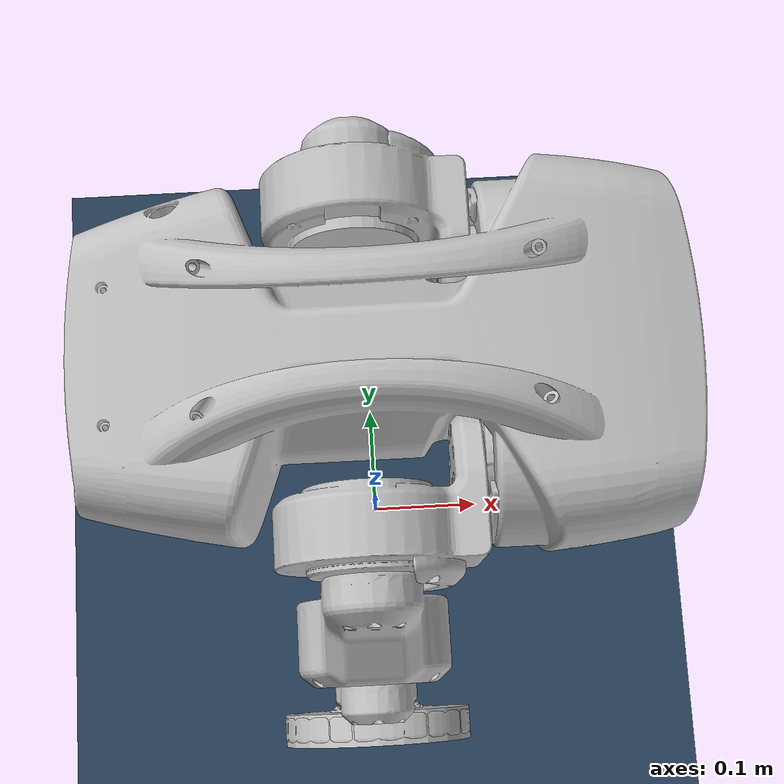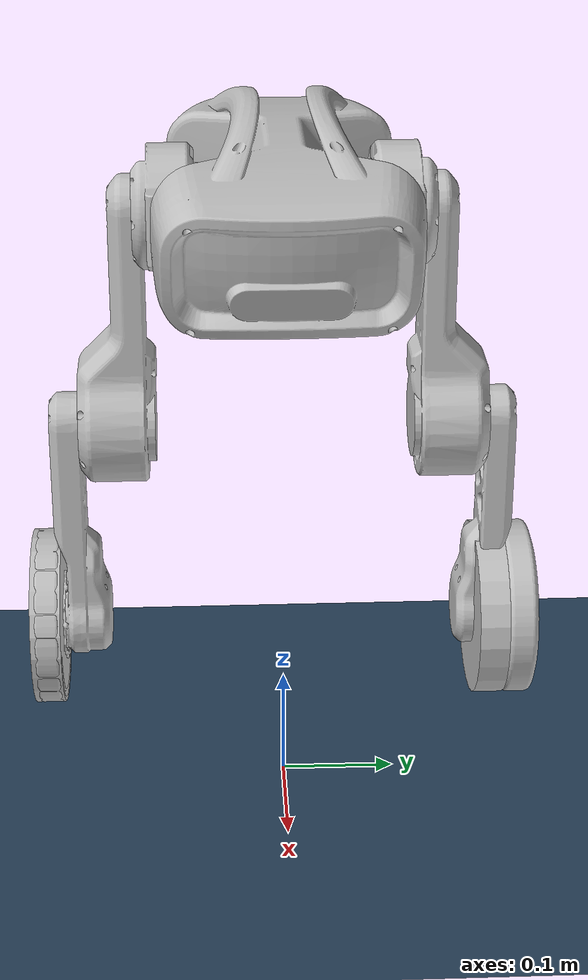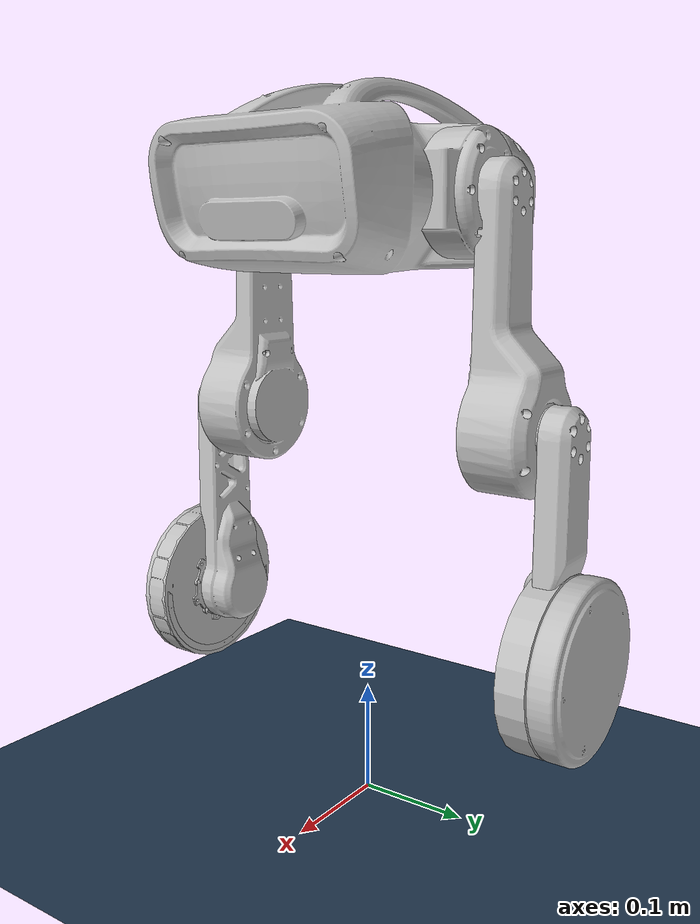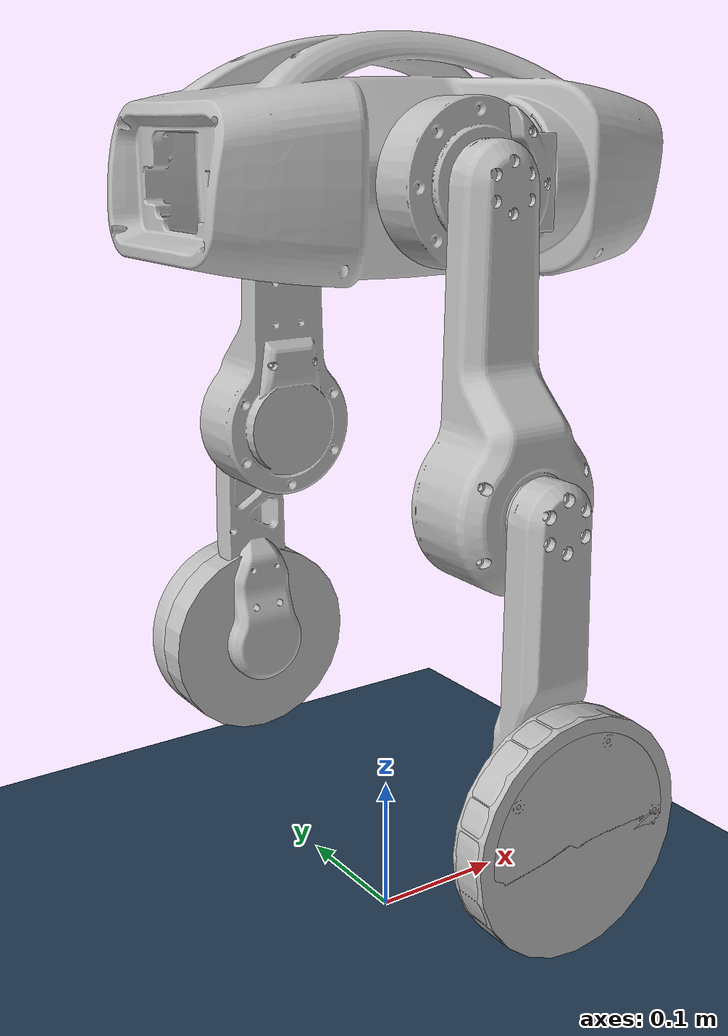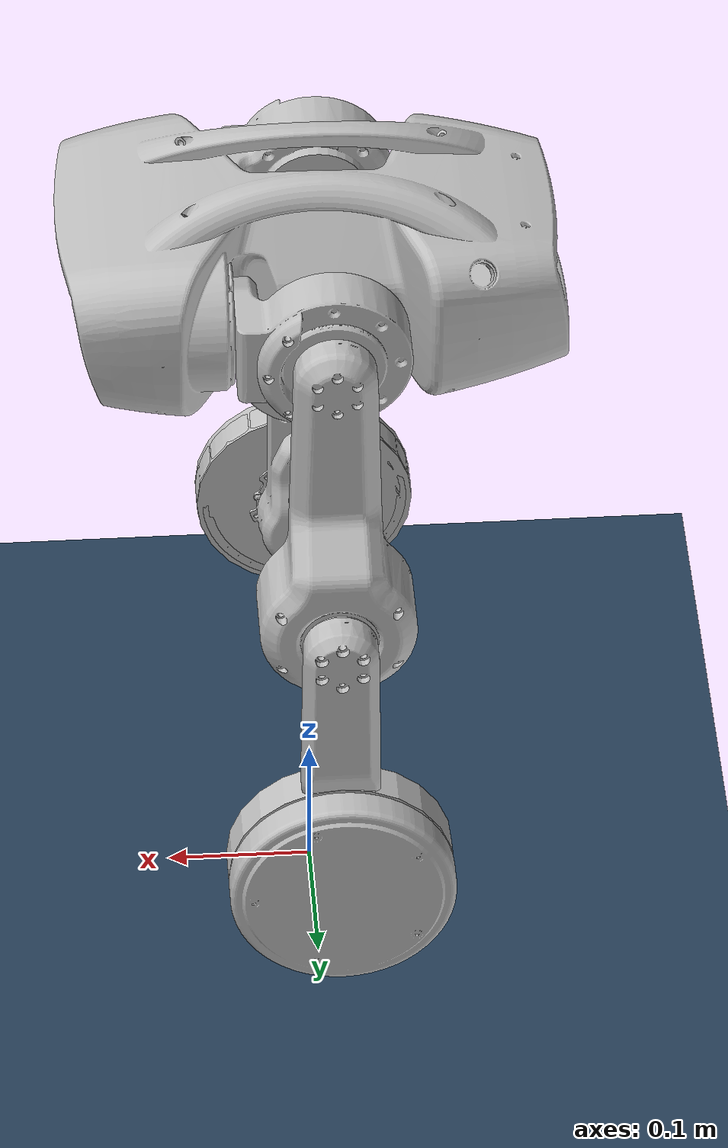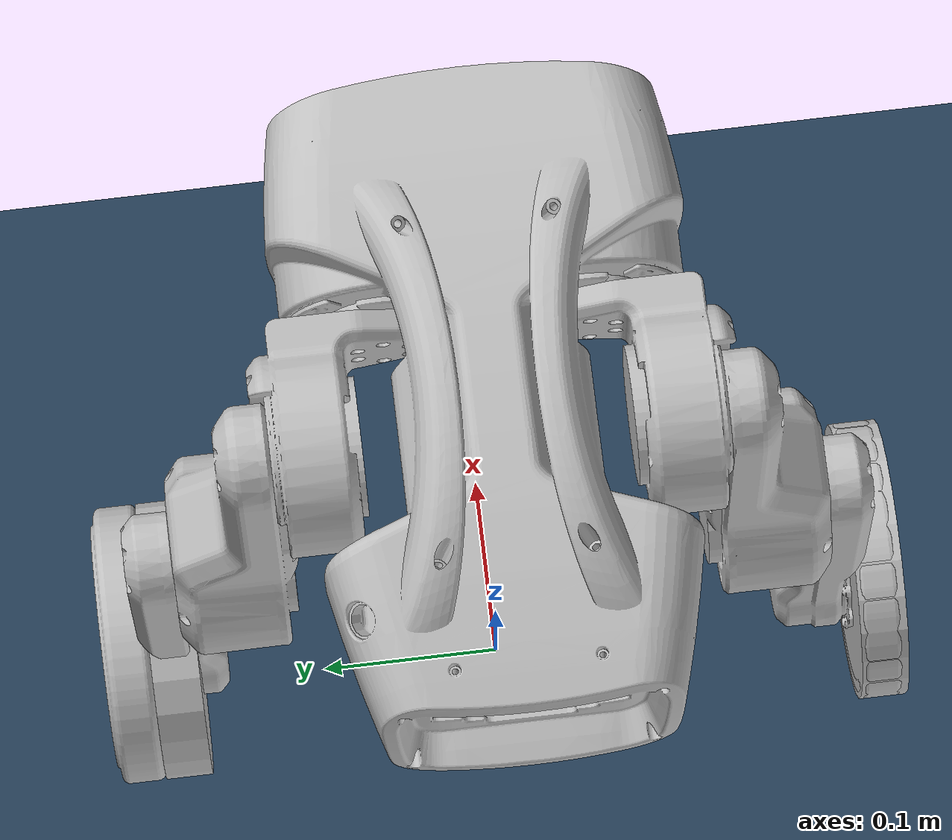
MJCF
<mujoco model="big_pineapple scene">
  <include file="big_pineapple.xml"/>

  <statistic center="0 0 0.1" extent="0.8"/>

  <visual>
    <headlight diffuse="0.6 0.6 0.6" ambient="0.3 0.3 0.3" specular="0 0 0"/>
    <rgba haze="0.15 0.25 0.35 1"/>
    <global azimuth="-130" elevation="-20"/>
  </visual>

  <asset>
    <texture type="skybox" builtin="gradient" rgb1="0.3 0.5 0.7" rgb2="0 0 0" width="512" height="3072"/>
    <texture type="2d" name="groundplane" builtin="checker" mark="edge" rgb1="0.2 0.3 0.4" rgb2="0.1 0.2 0.3"
      markrgb="0.8 0.8 0.8" width="300" height="300"/>
    <material name="groundplane" texture="groundplane" texuniform="true" texrepeat="5 5" reflectance="0.2"/>
  </asset>

  <worldbody>
    <light pos="0 0 1.5" dir="0 0 -1" directional="true"/>
    <geom name="floor" size="0 0 0.05" type="plane" material="groundplane"/>

  </worldbody>
</mujoco>

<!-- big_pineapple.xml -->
<mujoco model="big_pineapple">
  <compiler angle="radian" meshdir="../meshes/"/>

  <default>
    <default class="big_pineapple">
      <geom friction="0.4" margin="0.001" condim="1"/>
      <joint axis="0 1 0" damping="0.1" armature="0.01" frictionloss="0.2"/>
      <motor ctrlrange="-23.7 23.7"/>

      <default class="hip">
        <joint range="-0.698 0.698"/>
        <motor ctrlrange="-23.7 23.7"/>
      </default>

      <default class="thigh">
        <joint range="0 2.1"/>
        <motor ctrlrange="-23.7 23.7"/>
      </default>

      <default class="calf">
        <joint range="-3.3 0"/>
        <motor ctrlrange="-23.7 23.7"/>
      </default>

      <default class="visual">
        <geom type="mesh" contype="0" conaffinity="0" group="2"/>
      </default>

      <default class="collision">
        <geom group="3"/>
        <default class="wheel">
        </default>
      </default>
    </default>
  </default>

  <asset>
    <mesh name="base_link" file="base_link.STL"/>
    <mesh name="base_link_collision" file="base_link_collision.STL"/>
    <mesh name="R_hip" file="R_hip.STL"/>
    <mesh name="R_thigh" file="R_thigh.STL"/>
    <mesh name="R_thigh_collision" file="R_thigh_collision.STL"/>
    <mesh name="R_thigh_imu" file="R_thigh_imu.STL"/>
    <mesh name="R_calf" file="R_calf.STL"/>
    <mesh name="R_calf_collision" file="R_calf_collision.STL"/>
    <mesh name="R_calf_imu" file="R_calf_imu.STL"/>
    <mesh name="R_wheel" file="R_wheel.STL"/>
    <mesh name="L_hip" file="L_hip.STL"/>
    <mesh name="L_thigh" file="L_thigh.STL"/>
    <mesh name="L_thigh_collision" file="L_thigh_collision.STL"/>
    <mesh name="L_thigh_imu" file="L_thigh_imu.STL"/>
    <mesh name="L_calf" file="L_calf.STL"/>
    <mesh name="L_calf_collision" file="L_calf_collision.STL"/>
    <mesh name="L_calf_imu" file="L_calf_imu.STL"/>
    <mesh name="L_wheel" file="L_wheel.STL"/>
  </asset>

  <worldbody>
  <body name="base_link" pos="0 0 0.5" >
      <inertial pos="0.03373 0.000107 0.0532" quat="1 0 0 0" mass="1.904" diaginertia="0.0025 0.0054 0.00573" />
      <freejoint />
      <site name="imu" pos="0 0 0" size="0.01" rgba="0 0 1 1"/>
      <geom type="mesh" contype="0" conaffinity="0" group="1" density="0" rgba="0.752941 0.752941 0.752941 1" mesh="base_link"/>
      <geom type="mesh" rgba="0.752941 0.752941 0.752941 1" mesh="base_link_collision" class="collision"/>
      <body name="R_hip" pos="0 -0.0523233 0.0429598">
        <inertial pos="0.000230846 -0.0364546 -0.000109383" quat="0.467359 0.462291 0.528575 0.537095" mass="0.41769" diaginertia="0.000566489 0.000395359 0.000312956"/>
        <joint name="R_hip_joint" pos="0 0 0" axis="1 0 0"/>
        <geom type="mesh" contype="0" conaffinity="0" group="1" density="0" rgba="0.752941 0.752941 0.752941 1" mesh="R_hip"/>
        <body name="R_thigh" pos="-0.00923331 -0.0546576 0">
          <inertial pos="-3.38127e-06 -0.0311114 -0.157691" quat="0.706547 -0.0284536 0.0284971 0.70652" mass="0.658113" diaginertia="0.00229605 0.0020472 0.000511199"/>
          <joint name="R_thigh_joint" pos="0 0 0" axis="0 1 0"/>
          <geom type="mesh" contype="0" conaffinity="0" group="1" density="0" rgba="0.752941 0.752941 0.752941 1" mesh="R_thigh"/>
          <geom type="mesh" rgba="0.752941 0.752941 0.752941 1" mesh="R_thigh_collision" class="collision"/>
          <geom pos="0 -0.0185192 -0.095" quat="0.707107 0.707107 0 0" type="mesh" contype="0" conaffinity="0" group="1" density="0" rgba="0.6 0.6 0.6 1" mesh="R_thigh_imu"/>
          <body name="R_calf" pos="0 -0.0457696 -0.19">
            <inertial pos="-0.000118296 -0.027942 -0.0973341" quat="0.707231 0.00540281 -0.00589865 0.706937" mass="0.188922" diaginertia="0.000795198 0.000747459 5.66405e-05"/>
            <joint name="R_calf_joint" pos="0 0 0" axis="0 1 0"/>
            <geom type="mesh" contype="0" conaffinity="0" group="1" density="0" rgba="0.752941 0.752941 0.752941 1" mesh="R_calf"/>
            <geom type="mesh" rgba="0.752941 0.752941 0.752941 1" mesh="R_calf_collision" class="collision"/>
            <geom pos="0 -0.0145495 -0.1413" quat="0.707107 -0.707107 0 0" type="mesh" contype="0" conaffinity="0" group="1" density="0" rgba="0.6 0.6 0.6 1" mesh="R_calf_imu"/>
            <body name="R_wheel" pos="0 -0.0410995 -0.19">
              <inertial pos="1.38873e-07 -0.0131702 4.60847e-08" quat="0.458251 0.538522 0.538522 0.458251" mass="0.220089" diaginertia="0.000871936 0.000441932 0.000441875"/>
              <joint name="R_wheel_joint" pos="0 0 0" axis="0 1 0"/>
              <geom type="mesh" contype="0" conaffinity="0" group="1" density="0" rgba="0.752941 0.752941 0.752941 1" mesh="R_wheel"/>
              <geom size="0.077 0.013" pos="0 -0.013 0" quat="0.707105 -0.707108 0 0" type="cylinder" rgba="0.752941 0.752941 0.752941 1"/>
            </body>
          </body>
        </body>
      </body>
      <body name="L_hip" pos="0 0.0523233 0.0429598">
        <inertial pos="0.000233037 0.037362 -0.000107238" quat="0.536972 0.528707 0.46239 0.467253" mass="0.417684" diaginertia="0.000566488 0.000395324 0.000312987"/>
        <joint name="L_hip_joint" pos="0 0 0" axis="1 0 0"/>
        <geom type="mesh" contype="0" conaffinity="0" group="1" density="0" rgba="0.752941 0.752941 0.752941 1" mesh="L_hip"/>
        <body name="L_thigh" pos="-0.00923331 0.0546576 0">
          <inertial pos="-9.632e-07 0.0320047 -0.15769" quat="0.7065 0.0285019 -0.0285094 0.706564" mass="0.658114" diaginertia="0.00229595 0.00204715 0.000511207"/>
          <joint name="L_thigh_joint" pos="0 0 0" axis="0 1 0"/>
          <geom type="mesh" contype="0" conaffinity="0" group="1" density="0" rgba="0.752941 0.752941 0.752941 1" mesh="L_thigh"/>
          <geom type="mesh" rgba="0.752941 0.752941 0.752941 1" mesh="L_thigh_collision" class="collision"/>
          <geom pos="0 0.0185192 -0.095" quat="0.707107 -0.707107 0 0" type="mesh" contype="0" conaffinity="0" group="1" density="0" rgba="0.6 0.6 0.6 1" mesh="L_thigh_imu"/>
          <body name="L_calf" pos="0 0.0457696 -0.19">
            <inertial pos="-0.000118716 0.0279422 -0.0973342" quat="0.706937 -0.00589983 0.00540238 0.707231" mass="0.18892" diaginertia="0.000795186 0.000747449 5.66377e-05"/>
            <joint name="L_calf_joint" pos="0 0 0" axis="0 1 0"/>
            <geom type="mesh" contype="0" conaffinity="0" group="1" density="0" rgba="0.752941 0.752941 0.752941 1" mesh="L_calf"/>
            <geom type="mesh" rgba="0.752941 0.752941 0.752941 1" mesh="L_calf_collision" class="collision"/>
            <geom pos="0 0.0145495 -0.1413" quat="0.707107 0.707107 0 0" type="mesh" contype="0" conaffinity="0" group="1" density="0" rgba="0.6 0.6 0.6 1" mesh="L_calf_imu"/>
            <body name="L_wheel" pos="0 0.0410995 -0.19">
              <inertial pos="1.17499e-07 0.0131702 -1.85871e-07" quat="0.431754 0.55999 0.55999 0.431754" mass="0.220086" diaginertia="0.000871926 0.000441924 0.000441872"/>
              <joint name="L_wheel_joint" pos="0 0 0" axis="0 1 0"/>
              <geom type="mesh" contype="0" conaffinity="0" group="1" density="0" rgba="0.752941 0.752941 0.752941 1" mesh="L_wheel"/>
              <geom size="0.077 0.013" pos="0 -0.013 0" quat="0.707105 -0.707108 0 0" type="cylinder" rgba="0.752941 0.752941 0.752941 1"/>
            </body>
          </body>
        </body>
      </body>
    </body>
  </worldbody>

  <actuator>
      <motor class="hip" name="L_hip" joint="L_hip_joint" />
      <motor class="thigh" name="L_thigh" joint="L_thigh_joint" />
      <motor class="calf" name="L_calf" joint="L_calf_joint" />
      <motor ctrlrange="-15 15" name="L_wheel" joint="L_wheel_joint" />

      <motor class="hip" name="R_hip" joint="R_hip_joint" />
      <motor class="thigh" name="R_thigh" joint="R_thigh_joint" />
      <motor class="calf" name="R_calf" joint="R_calf_joint" />
      <motor ctrlrange="-15 15" name="R_wheel" joint="R_wheel_joint" />

  </actuator>

  <sensor>

      <jointpos name="L_hip_pos" joint="L_hip_joint" />
      <jointpos name="L_thigh_pos" joint="L_thigh_joint" />
      <jointpos name="L_calf_pos" joint="L_calf_joint" />
      <jointpos name="L_wheel_pos" joint="L_wheel_joint" />

      <jointpos name="R_hip_pos" joint="R_hip_joint" />
      <jointpos name="R_thigh_pos" joint="R_thigh_joint" />
      <jointpos name="R_calf_pos" joint="R_calf_joint" />
      <jointpos name="R_wheel_pos" joint="R_wheel_joint" />

      <jointvel name="L_hip_vel" joint="L_hip_joint" />
      <jointvel name="L_thigh_vel" joint="L_thigh_joint" />
      <jointvel name="L_calf_vel" joint="L_calf_joint" />
      <jointvel name="L_wheel_vel" joint="L_wheel_joint" noise="0.0"/>

      <jointvel name="R_hip_vel" joint="R_hip_joint" />
      <jointvel name="R_thigh_vel" joint="R_thigh_joint" />
      <jointvel name="R_calf_vel" joint="R_calf_joint" />
      <jointvel name="R_wheel_vel" joint="R_wheel_joint" noise="0.0"/>

      <jointactuatorfrc name="L_hip_torque" joint="L_hip_joint" noise="0.01" />
      <jointactuatorfrc name="L_thigh_torque" joint="L_thigh_joint" noise="0.01" />
      <jointactuatorfrc name="L_calf_torque" joint="L_calf_joint" noise="0.01" />
      <jointactuatorfrc name="L_wheel_torque" joint="L_wheel_joint" />

      <jointactuatorfrc name="R_hip_torque" joint="R_hip_joint" noise="0.01" />
      <jointactuatorfrc name="R_thigh_torque" joint="R_thigh_joint" noise="0.01" />
      <jointactuatorfrc name="R_calf_torque" joint="R_calf_joint" noise="0.01" />
      <jointactuatorfrc name="R_wheel_torque" joint="R_wheel_joint" />

      <framequat name="imu_quat" objtype="site" objname="imu" noise="0.0"/>
      <gyro name="imu_gyro" site="imu" noise="0.0"/>
      <accelerometer name="imu_acc" site="imu" />

      <framepos name="frame_pos" objtype="site" objname="imu" />
      <framelinvel name="frame_lin_vel" objtype="site" objname="imu" />
      <frameangvel name="frame_ang_vel" objtype="site" objname="imu" />
  </sensor>

</mujoco>
